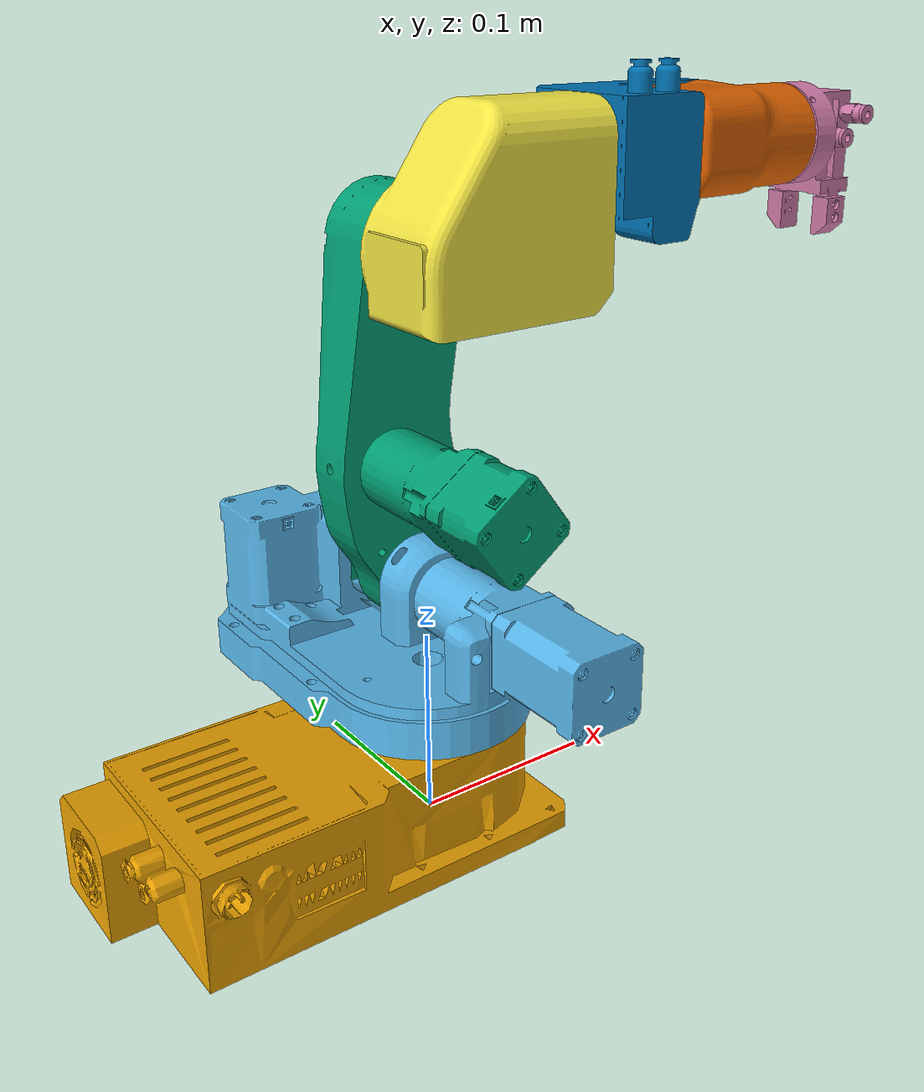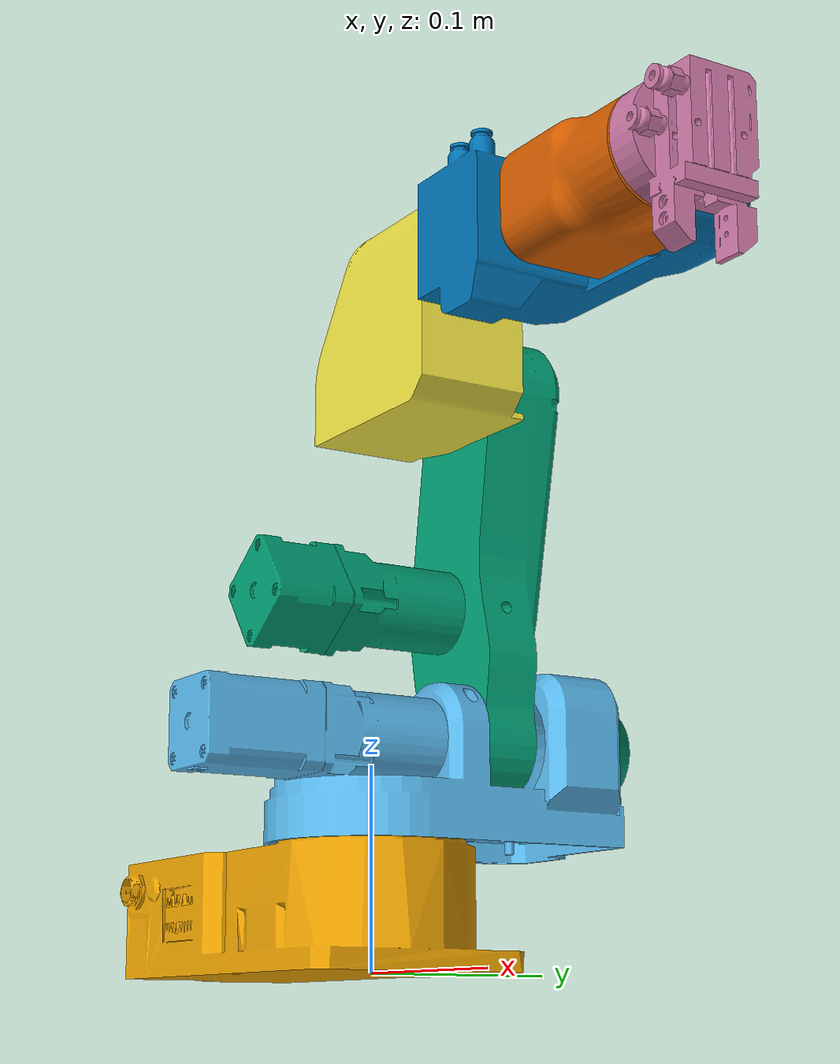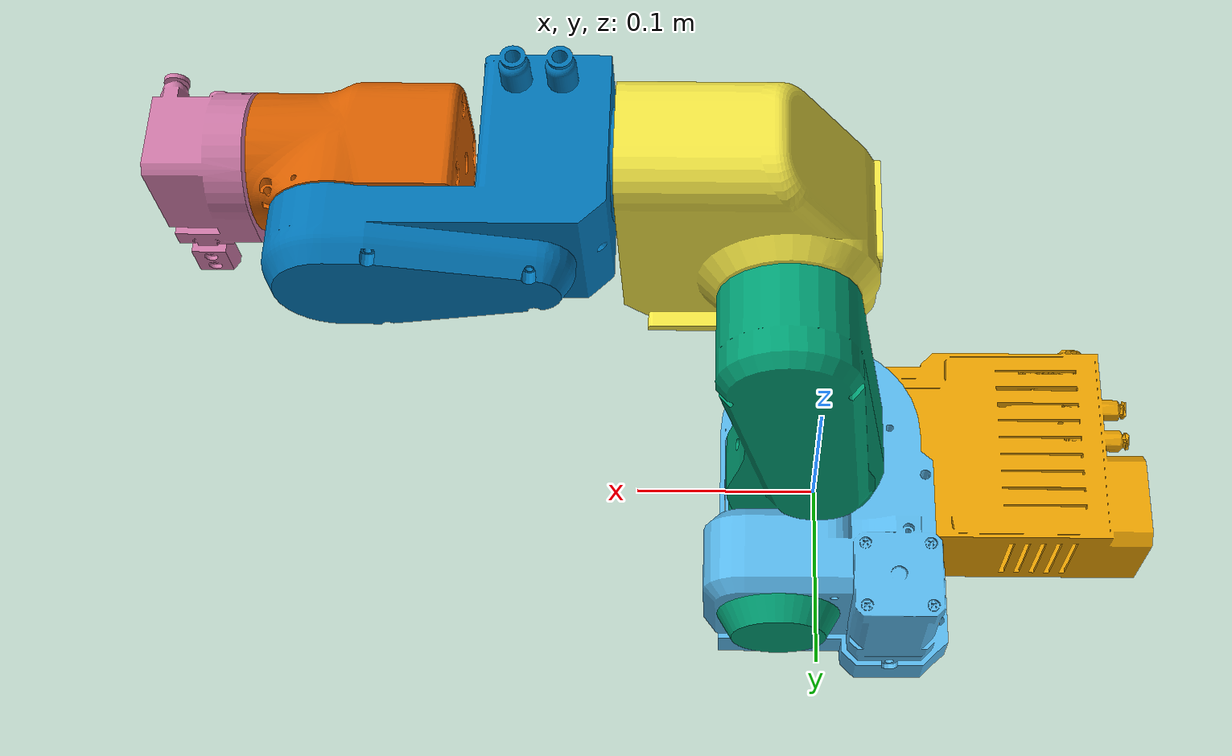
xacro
<?xml version="1.0"?>
<robot xmlns:xacro="http://www.ros.org/wiki/xacro" name="parol6">
    <xacro:arg name="initial_positions_file" default="initial_positions.yaml" />

    <!-- Import parol6 urdf file -->
    <xacro:include filename="$(find parol6_description)/urdf/parol6.urdf.xacro" />

    <!-- Import control_xacro -->
    <xacro:include filename="parol6.ros2_control.xacro" />

    <xacro:parol6_ros2_control name="FakeSystem" initial_positions_file="$(arg initial_positions_file)"/>

</robot>

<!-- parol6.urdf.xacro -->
<robot xmlns:xacro="http://wiki.ros.org/xacro"
      name="parol6">

    <link name="base_link">
      <inertial>
        <origin xyz="-0.0274562034602567 -0.00137265400595656 0.031237920982338" rpy="0 0 0" />
        <mass value="0.812661291810144" />
        <inertia ixx="0.00110740279540382" ixy="4.67463481205112E-05" ixz="8.47873933528831E-06"
                iyy="0.00106582362830227" iyz="-2.6194130573118E-06" izz="0.00147883396699374" />
      </inertial>
      <visual>
        <origin xyz="0 0 0" rpy="0 0 0" />
        <geometry>
          <mesh filename="package://parol6_description/meshes/base_link.dae" />
        </geometry>
      </visual>
      <collision>
        <origin xyz="0 0 0" rpy="0 0 0" />
        <geometry>
          <mesh filename="package://parol6_description/meshes/base_link.dae" />
        </geometry>
      </collision>
    </link>

    <link name="L1">
      <inertial>
        <origin xyz="0.00524529891406311 0.0289722820784871 0.0992791429452917" rpy="0 0 0" />
        <mass value="0.644800830530233" />
        <inertia ixx="0.00109429409029172" ixy="-6.27156874097953E-05" ixz="-5.70466862844753E-05"
                iyy="0.00056996197700816" iyz="-0.000121686402940313" izz="0.00129487722474286" />
      </inertial>
      <visual>
        <origin xyz="0 0 0" rpy="0 0 0" />
        <geometry>
          <mesh filename="package://parol6_description/meshes/L1.dae" />
        </geometry>
      </visual>
      <collision>
        <origin xyz="0 0 0" rpy="0 0 0" />
        <geometry>
          <mesh filename="package://parol6_description/meshes/L1.dae" />
        </geometry>
      </collision>
    </link>

    <joint name="J1" type="revolute">
      <origin xyz="0 0 0" rpy="0 0 0" />
      <parent link="base_link" />
      <child link="L1" />
      <axis xyz="0 0 1" />
      <limit lower="-3.14" upper="3.14" effort="0" velocity="0" />
    </joint>

    <link name="L2">
      <inertial>
        <origin xyz="-0.0094181617193695 -0.0783879603613605 0.0369429741417731" rpy="0 0 0" />
        <mass value="0.512334779399788" />
        <inertia ixx="0.00123357482646866" ixy="3.63236238096924E-06" ixz="-3.30834557934783E-07"
                iyy="0.000205462733796053" iyz="4.86441772103282E-07" izz="0.00132225033266162" />
      </inertial>
      <visual>
        <origin xyz="0 0 0" rpy="0 0 0" />
        <geometry>
          <mesh filename="package://parol6_description/meshes/L2.dae" />
        </geometry>
      </visual>
      <collision>
        <origin xyz="0 0 0" rpy="0 0 0" />
        <geometry>
          <mesh filename="package://parol6_description/meshes/L2.dae" />
        </geometry>
      </collision>
    </link>

    <joint name="J2" type="revolute">
      <origin xyz="0.0234207210610375 0 0.1105" rpy="-1.5707963267949 0 0" />
      <parent link="L1" />
      <child link="L2" />
      <axis xyz="0 0 1" />
      <limit lower="-1.57" upper="1.57" effort="0" velocity="0" />
    </joint>

    <link name="L3">
      <inertial>
        <origin xyz="0.0155509885239593 -0.0191127686426613 -0.00153322577917236" rpy="0 0 0" />
        <mass value="0.550970997806044" />
        <inertia ixx="0.00057827573271994" ixy="0.000116505232322314" ixz="-1.19955293256513E-05"
                iyy="0.000567011676944701" iyz="1.55814255036021E-05" izz="0.000815862001506843" />
      </inertial>
      <visual>
        <origin xyz="0 0 0" rpy="0 0 0" />
        <geometry>
          <mesh filename="package://parol6_description/meshes/L3.dae" />
        </geometry>
      </visual>
      <collision>
        <origin xyz="0 0 0" rpy="0 0 0" />
        <geometry>
          <mesh filename="package://parol6_description/meshes/L3.dae" />
        </geometry>
      </collision>
    </link>

    <joint name="J3" type="revolute">
      <origin xyz="0 -0.18 0" rpy="3.1416 0 -1.5708" />
      <parent link="L2" />
      <child link="L3" />
      <axis xyz="0 0 -1" />
      <limit lower="-1.57" upper="1.57" effort="0" velocity="0" />
    </joint>

    <link name="L4">
      <inertial>
        <origin xyz="0.000947028430634433 -0.008978947112462 -0.0924798659827059" rpy="0 0 0" />
        <mass value="0.39346362633915" />
        <inertia ixx="0.000371672516830215" ixy="-1.05560000666389E-05" ixz="-1.56899445418326E-07"
                iyy="0.000332364226344361" iyz="-6.10397110934672E-05" izz="0.000250606789571909" />
      </inertial>
      <visual>
        <origin xyz="0 0 0" rpy="0 0 0" />
        <geometry>
          <mesh filename="package://parol6_description/meshes/L4.dae"/>
        </geometry>
      </visual>
      <collision>
        <mesh filename="package://parol6_description/meshes/L4.dae"/>
        <geometry>
           <mesh filename="package://parol6_description/meshes/L4.dae"/>
        </geometry>
      </collision>
    </link>

    <joint name="J4" type="revolute">
      <origin xyz="0.0435 0.0 0.0" rpy="1.5708 0 3.1415" />
      <parent link="L3" />
      <child link="L4" />
      <axis xyz="0 0 1" />
      <limit lower="-1.57" upper="1.57" effort="0" velocity="0" />
    </joint>

    <link name="L5">
    <inertial>
      <origin xyz="6.7162171684676E-06 -0.00621420980825221 -0.000960871025916146" rpy="0 0 0" />
      <mass value="0.185171777001718" />
      <inertia
        ixx="0.000109176748460021"
        ixy="-1.27195013439061E-07"
        ixz="8.4436049148633E-08"
        iyy="8.41307588934268E-05"
        iyz="-4.41596193640049E-07"
        izz="0.000110629136236229" />
    </inertial>
    <visual>
      <origin xyz="0 0 0" rpy="0 0 0" />
      <geometry>
        <mesh filename="package://parol6_description/meshes/L5.dae" />
      </geometry>
    </visual>
    <collision>
      <origin xyz="0 0 0" rpy="0 0 0" />
      <geometry>
        <mesh filename="package://parol6_description/meshes/L5.dae" />
      </geometry>
    </collision>
  </link>

  <joint name="J5" type="revolute">
    <origin xyz="0 0 -0.17635" rpy="-1.5708 0 0" />
    <parent link="L4" />
    <child link="L5" />
    <axis xyz="0 0 -1" />
      <limit lower="-1.57" upper="1.57" effort="0" velocity="0" />
  </joint>

  <link name="L6">
    <inertial>
      <origin xyz="0.00632955087228015 -0.000453856352095022 -0.0554441567386594" rpy="0 0 0" />
      <mass value="0.0703261410665101" />
      <inertia
        ixx="1.40276237518287E-05"
        ixy="3.15503246005279E-07"
        ixz="-9.28469598788221E-07"
        iyy="1.81406721166117E-05"
        iyz="-9.43630009030796E-07"
        izz="2.34608103291027E-05" />
    </inertial>
    <visual>
      <origin xyz="0 0 0" rpy="0 0 0" />
      <geometry>
        <mesh filename="package://parol6_description/meshes/L6.dae" />
      </geometry>
    </visual>
    <collision>
      <origin xyz="0 0 0" rpy="0 0 0" />
      <geometry>
        <mesh filename="package://parol6_description/meshes/L6.dae" />
      </geometry>
    </collision>
  </link>

  <joint name="J6" type="continuous">
    <origin xyz="0 0 0" rpy="1.5708 0 0" />
    <parent link="L5" />
    <child link="L6" />
    <axis xyz="0 0 -1" />
    <limit lower="0" upper="0" effort="0" velocity="0" />
  </joint>

</robot>
